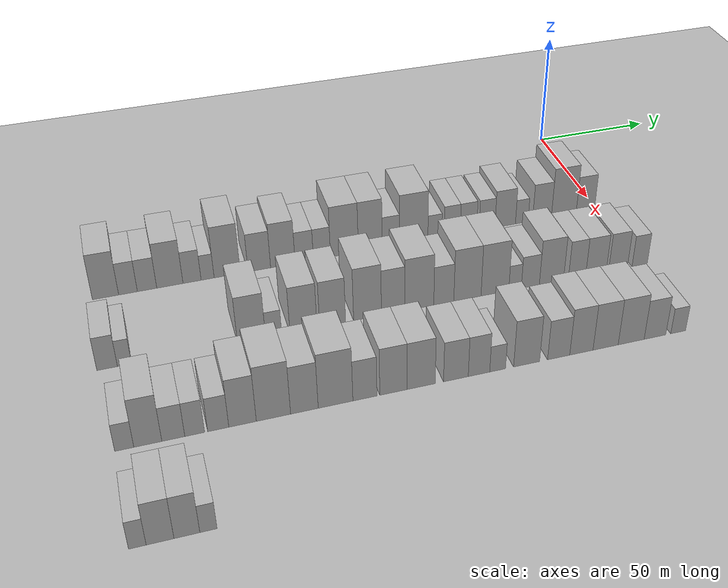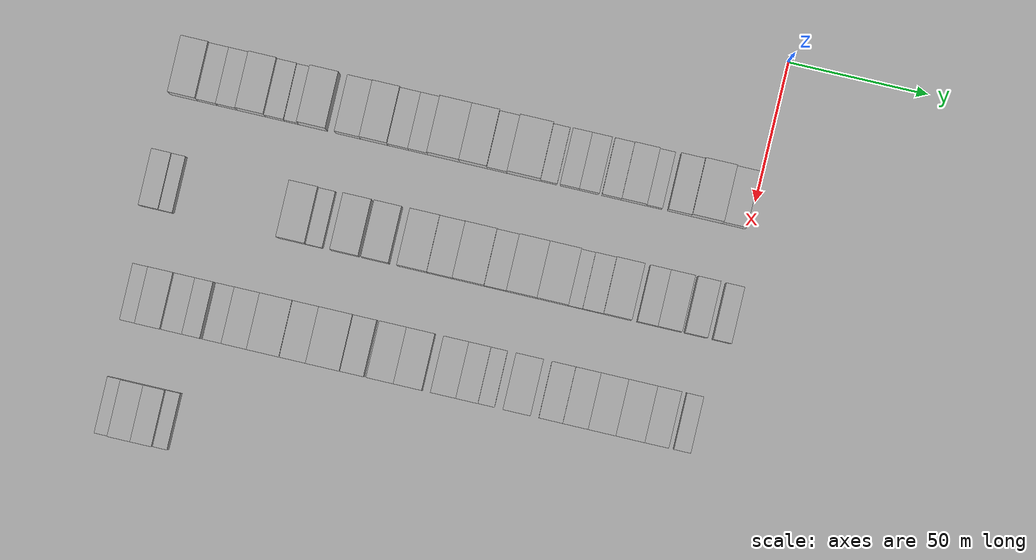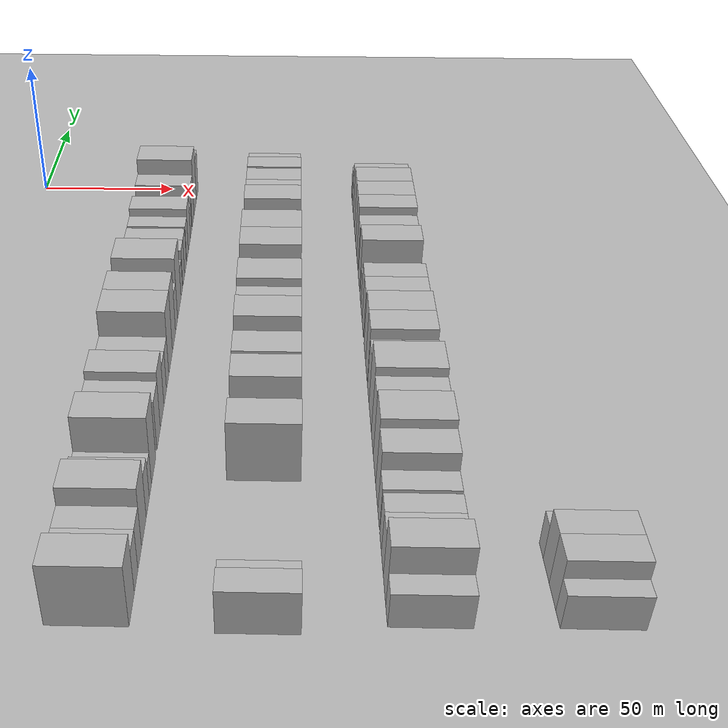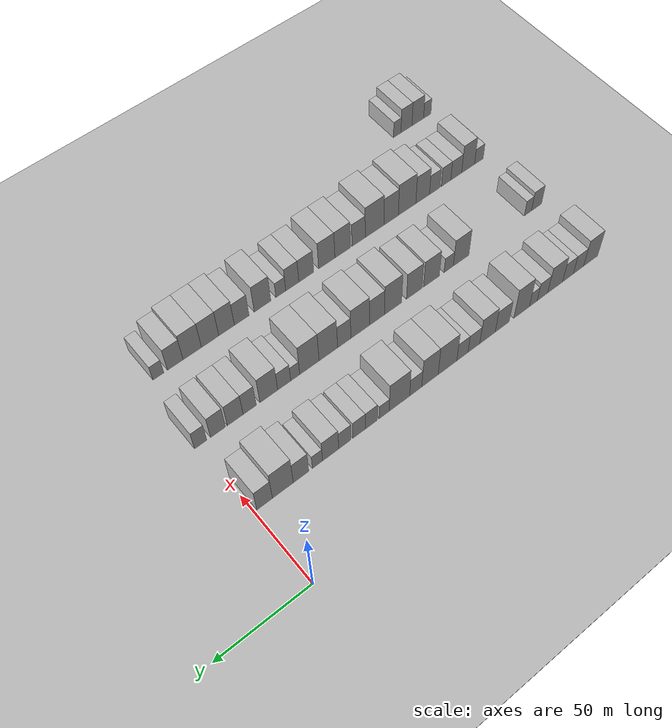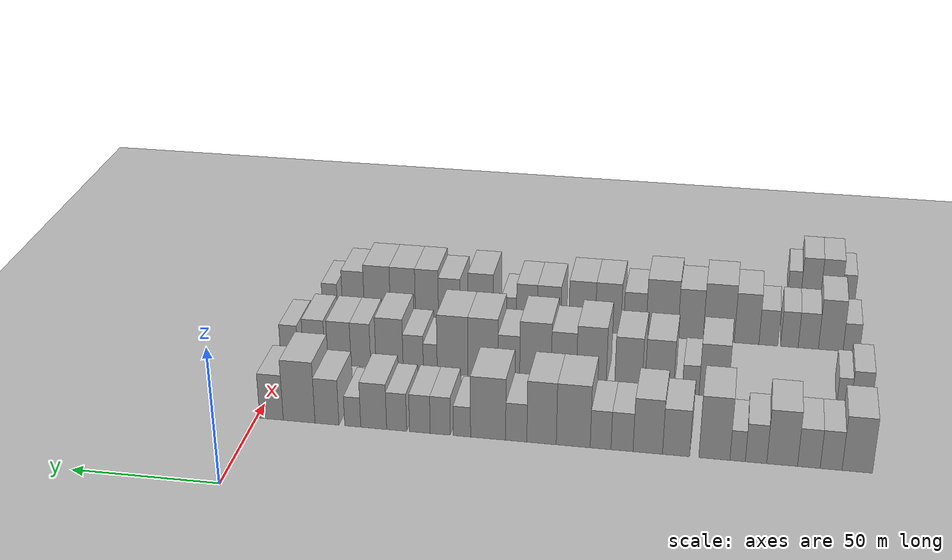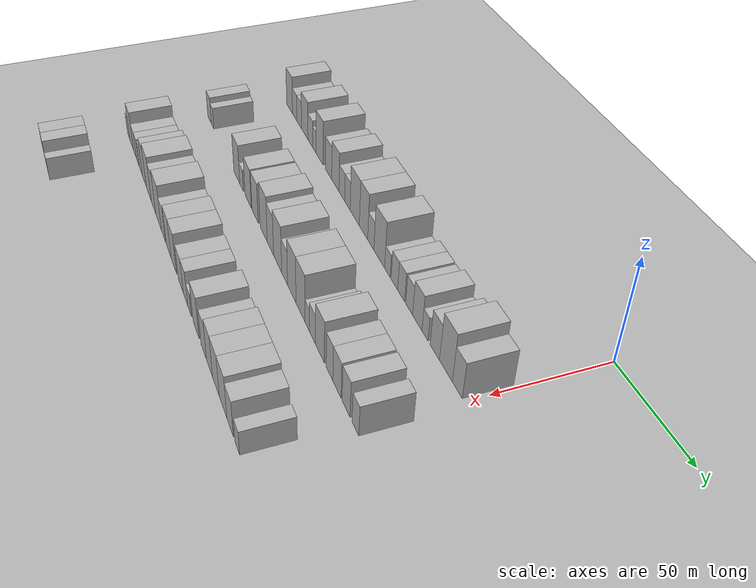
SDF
<sdf version="1.6">
 <world name="default">
  <include><name>ground_plane_1</name><uri>model://HANNAS_ground_plane</uri></include>
  <include>
   <name>ground_plane_2</name>
   <uri>model://HANNAS_ground_plane</uri>
   <pose>100 0 0  0 0 0</pose>
  </include>
  <model name="building_50">
   <static>1</static>
   <pose>50.0000 -201.2752 0 0.000000 0.000000 0.000000</pose>
   <link name="link">
    <pose>0 0 10.50 0 0 0</pose>
    <collision name="collision"><geometry><box><size>20.0000 9.6597 21.0000</size></box></geometry></collision>
    <visual name="visual">
     <cast_shadows>0</cast_shadows>
     <geometry><box><size>20.0000 9.6597 21.0000</size></box></geometry>
     <material>
      <script>
       <uri>model://HANNAS_wall/materials/scripts</uri>
       <uri>model://HANNAS_wall/materials/textures</uri>
       <name>vrc/HANNAS_wall</name>
      </script>
     </material>
    </visual>
   </link>
  </model>
  <model name="building_51">
   <static>1</static>
   <pose>50.0000 -192.9699 0 0.000000 0.000000 0.000000</pose>
   <link name="link">
    <pose>0 0 7.50 0 0 0</pose>
    <collision name="collision"><geometry><box><size>20.0000 6.9508 15.0000</size></box></geometry></collision>
    <visual name="visual">
     <cast_shadows>0</cast_shadows>
     <geometry><box><size>20.0000 6.9508 15.0000</size></box></geometry>
     <material>
      <script>
       <uri>model://HANNAS_wall/materials/scripts</uri>
       <uri>model://HANNAS_wall/materials/textures</uri>
       <name>vrc/HANNAS_wall</name>
      </script>
     </material>
    </visual>
   </link>
  </model>
  <model name="building_52">
   <static>1</static>
   <pose>50.0000 -185.8739 0 0.000000 0.000000 0.000000</pose>
   <link name="link">
    <pose>0 0 7.50 0 0 0</pose>
    <collision name="collision"><geometry><box><size>20.0000 7.2413 15.0000</size></box></geometry></collision>
    <visual name="visual">
     <cast_shadows>0</cast_shadows>
     <geometry><box><size>20.0000 7.2413 15.0000</size></box></geometry>
     <material>
      <script>
       <uri>model://HANNAS_wall/materials/scripts</uri>
       <uri>model://HANNAS_wall/materials/textures</uri>
       <name>vrc/HANNAS_wall</name>
      </script>
     </material>
    </visual>
   </link>
  </model>
  <model name="building_53">
   <static>1</static>
   <pose>50.0000 -177.2964 0 0.000000 0.000000 0.000000</pose>
   <link name="link">
    <pose>0 0 10.50 0 0 0</pose>
    <collision name="collision"><geometry><box><size>20.0000 9.9137 21.0000</size></box></geometry></collision>
    <visual name="visual">
     <cast_shadows>0</cast_shadows>
     <geometry><box><size>20.0000 9.9137 21.0000</size></box></geometry>
     <material>
      <script>
       <uri>model://HANNAS_wall/materials/scripts</uri>
       <uri>model://HANNAS_wall/materials/textures</uri>
       <name>vrc/HANNAS_wall</name>
      </script>
     </material>
    </visual>
   </link>
  </model>
  <model name="building_54">
   <static>1</static>
   <pose>50.0000 -168.8878 0 0.000000 0.000000 0.000000</pose>
   <link name="link">
    <pose>0 0 7.50 0 0 0</pose>
    <collision name="collision"><geometry><box><size>20.0000 6.9035 15.0000</size></box></geometry></collision>
    <visual name="visual">
     <cast_shadows>0</cast_shadows>
     <geometry><box><size>20.0000 6.9035 15.0000</size></box></geometry>
     <material>
      <script>
       <uri>model://HANNAS_wall/materials/scripts</uri>
       <uri>model://HANNAS_wall/materials/textures</uri>
       <name>vrc/HANNAS_wall</name>
      </script>
     </material>
    </visual>
   </link>
  </model>
  <model name="building_55">
   <static>1</static>
   <pose>50.0000 -162.9367 0 0.000000 0.000000 0.000000</pose>
   <link name="link">
    <pose>0 0 6.00 0 0 0</pose>
    <collision name="collision"><geometry><box><size>20.0000 4.9988 12.0000</size></box></geometry></collision>
    <visual name="visual">
     <cast_shadows>0</cast_shadows>
     <geometry><box><size>20.0000 4.9988 12.0000</size></box></geometry>
     <material>
      <script>
       <uri>model://HANNAS_wall/materials/scripts</uri>
       <uri>model://HANNAS_wall/materials/textures</uri>
       <name>vrc/HANNAS_wall</name>
      </script>
     </material>
    </visual>
   </link>
  </model>
  <model name="building_56">
   <static>1</static>
   <pose>50.0000 -155.3822 0 0.000000 0.000000 0.000000</pose>
   <link name="link">
    <pose>0 0 12.00 0 0 0</pose>
    <collision name="collision"><geometry><box><size>20.0000 10.1102 24.0000</size></box></geometry></collision>
    <visual name="visual">
     <cast_shadows>0</cast_shadows>
     <geometry><box><size>20.0000 10.1102 24.0000</size></box></geometry>
     <material>
      <script>
       <uri>model://HANNAS_wall/materials/scripts</uri>
       <uri>model://HANNAS_wall/materials/textures</uri>
       <name>vrc/HANNAS_wall</name>
      </script>
     </material>
    </visual>
   </link>
  </model>
  <model name="building_57">
   <static>1</static>
   <pose>50.0000 -142.8923 0 0.000000 0.000000 0.000000</pose>
   <link name="link">
    <pose>0 0 9.00 0 0 0</pose>
    <collision name="collision"><geometry><box><size>20.0000 8.8695 18.0000</size></box></geometry></collision>
    <visual name="visual">
     <cast_shadows>0</cast_shadows>
     <geometry><box><size>20.0000 8.8695 18.0000</size></box></geometry>
     <material>
      <script>
       <uri>model://HANNAS_wall/materials/scripts</uri>
       <uri>model://HANNAS_wall/materials/textures</uri>
       <name>vrc/HANNAS_wall</name>
      </script>
     </material>
    </visual>
   </link>
  </model>
  <model name="building_58">
   <static>1</static>
   <pose>50.0000 -133.6059 0 0.000000 0.000000 0.000000</pose>
   <link name="link">
    <pose>0 0 10.50 0 0 0</pose>
    <collision name="collision"><geometry><box><size>20.0000 9.7034 21.0000</size></box></geometry></collision>
    <visual name="visual">
     <cast_shadows>0</cast_shadows>
     <geometry><box><size>20.0000 9.7034 21.0000</size></box></geometry>
     <material>
      <script>
       <uri>model://HANNAS_wall/materials/scripts</uri>
       <uri>model://HANNAS_wall/materials/textures</uri>
       <name>vrc/HANNAS_wall</name>
      </script>
     </material>
    </visual>
   </link>
  </model>
  <model name="building_59">
   <static>1</static>
   <pose>50.0000 -125.1052 0 0.000000 0.000000 0.000000</pose>
   <link name="link">
    <pose>0 0 7.50 0 0 0</pose>
    <collision name="collision"><geometry><box><size>20.0000 7.2979 15.0000</size></box></geometry></collision>
    <visual name="visual">
     <cast_shadows>0</cast_shadows>
     <geometry><box><size>20.0000 7.2979 15.0000</size></box></geometry>
     <material>
      <script>
       <uri>model://HANNAS_wall/materials/scripts</uri>
       <uri>model://HANNAS_wall/materials/textures</uri>
       <name>vrc/HANNAS_wall</name>
      </script>
     </material>
    </visual>
   </link>
  </model>
  <model name="building_60">
   <static>1</static>
   <pose>50.0000 -118.0099 0 0.000000 0.000000 0.000000</pose>
   <link name="link">
    <pose>0 0 7.50 0 0 0</pose>
    <collision name="collision"><geometry><box><size>20.0000 6.8928 15.0000</size></box></geometry></collision>
    <visual name="visual">
     <cast_shadows>0</cast_shadows>
     <geometry><box><size>20.0000 6.8928 15.0000</size></box></geometry>
     <material>
      <script>
       <uri>model://HANNAS_wall/materials/scripts</uri>
       <uri>model://HANNAS_wall/materials/textures</uri>
       <name>vrc/HANNAS_wall</name>
      </script>
     </material>
    </visual>
   </link>
  </model>
  <model name="building_61">
   <static>1</static>
   <pose>50.0000 -108.9009 0 0.000000 0.000000 0.000000</pose>
   <link name="link">
    <pose>0 0 12.00 0 0 0</pose>
    <collision name="collision"><geometry><box><size>20.0000 11.3253 24.0000</size></box></geometry></collision>
    <visual name="visual">
     <cast_shadows>0</cast_shadows>
     <geometry><box><size>20.0000 11.3253 24.0000</size></box></geometry>
     <material>
      <script>
       <uri>model://HANNAS_wall/materials/scripts</uri>
       <uri>model://HANNAS_wall/materials/textures</uri>
       <name>vrc/HANNAS_wall</name>
      </script>
     </material>
    </visual>
   </link>
  </model>
  <model name="building_62">
   <static>1</static>
   <pose>50.0000 -98.3167 0 0.000000 0.000000 0.000000</pose>
   <link name="link">
    <pose>0 0 12.00 0 0 0</pose>
    <collision name="collision"><geometry><box><size>20.0000 9.8431 24.0000</size></box></geometry></collision>
    <visual name="visual">
     <cast_shadows>0</cast_shadows>
     <geometry><box><size>20.0000 9.8431 24.0000</size></box></geometry>
     <material>
      <script>
       <uri>model://HANNAS_wall/materials/scripts</uri>
       <uri>model://HANNAS_wall/materials/textures</uri>
       <name>vrc/HANNAS_wall</name>
      </script>
     </material>
    </visual>
   </link>
  </model>
  <model name="building_63">
   <static>1</static>
   <pose>50.0000 -89.8145 0 0.000000 0.000000 0.000000</pose>
   <link name="link">
    <pose>0 0 7.50 0 0 0</pose>
    <collision name="collision"><geometry><box><size>20.0000 7.1614 15.0000</size></box></geometry></collision>
    <visual name="visual">
     <cast_shadows>0</cast_shadows>
     <geometry><box><size>20.0000 7.1614 15.0000</size></box></geometry>
     <material>
      <script>
       <uri>model://HANNAS_wall/materials/scripts</uri>
       <uri>model://HANNAS_wall/materials/textures</uri>
       <name>vrc/HANNAS_wall</name>
      </script>
     </material>
    </visual>
   </link>
  </model>
  <model name="building_64">
   <static>1</static>
   <pose>50.0000 -80.2956 0 0.000000 0.000000 0.000000</pose>
   <link name="link">
    <pose>0 0 12.00 0 0 0</pose>
    <collision name="collision"><geometry><box><size>20.0000 11.8764 24.0000</size></box></geometry></collision>
    <visual name="visual">
     <cast_shadows>0</cast_shadows>
     <geometry><box><size>20.0000 11.8764 24.0000</size></box></geometry>
     <material>
      <script>
       <uri>model://HANNAS_wall/materials/scripts</uri>
       <uri>model://HANNAS_wall/materials/textures</uri>
       <name>vrc/HANNAS_wall</name>
      </script>
     </material>
    </visual>
   </link>
  </model>
  <model name="building_65">
   <static>1</static>
   <pose>50.0000 -71.4141 0 0.000000 0.000000 0.000000</pose>
   <link name="link">
    <pose>0 0 6.00 0 0 0</pose>
    <collision name="collision"><geometry><box><size>20.0000 5.8865 12.0000</size></box></geometry></collision>
    <visual name="visual">
     <cast_shadows>0</cast_shadows>
     <geometry><box><size>20.0000 5.8865 12.0000</size></box></geometry>
     <material>
      <script>
       <uri>model://HANNAS_wall/materials/scripts</uri>
       <uri>model://HANNAS_wall/materials/textures</uri>
       <name>vrc/HANNAS_wall</name>
      </script>
     </material>
    </visual>
   </link>
  </model>
  <model name="building_66">
   <static>1</static>
   <pose>50.0000 -64.0489 0 0.000000 0.000000 0.000000</pose>
   <link name="link">
    <pose>0 0 7.50 0 0 0</pose>
    <collision name="collision"><geometry><box><size>20.0000 6.8438 15.0000</size></box></geometry></collision>
    <visual name="visual">
     <cast_shadows>0</cast_shadows>
     <geometry><box><size>20.0000 6.8438 15.0000</size></box></geometry>
     <material>
      <script>
       <uri>model://HANNAS_wall/materials/scripts</uri>
       <uri>model://HANNAS_wall/materials/textures</uri>
       <name>vrc/HANNAS_wall</name>
      </script>
     </material>
    </visual>
   </link>
  </model>
  <model name="building_67">
   <static>1</static>
   <pose>50.0000 -57.0790 0 0.000000 0.000000 0.000000</pose>
   <link name="link">
    <pose>0 0 7.50 0 0 0</pose>
    <collision name="collision"><geometry><box><size>20.0000 7.0960 15.0000</size></box></geometry></collision>
    <visual name="visual">
     <cast_shadows>0</cast_shadows>
     <geometry><box><size>20.0000 7.0960 15.0000</size></box></geometry>
     <material>
      <script>
       <uri>model://HANNAS_wall/materials/scripts</uri>
       <uri>model://HANNAS_wall/materials/textures</uri>
       <name>vrc/HANNAS_wall</name>
      </script>
     </material>
    </visual>
   </link>
  </model>
  <model name="building_68">
   <static>1</static>
   <pose>50.0000 -49.0764 0 0.000000 0.000000 0.000000</pose>
   <link name="link">
    <pose>0 0 7.50 0 0 0</pose>
    <collision name="collision"><geometry><box><size>20.0000 6.9093 15.0000</size></box></geometry></collision>
    <visual name="visual">
     <cast_shadows>0</cast_shadows>
     <geometry><box><size>20.0000 6.9093 15.0000</size></box></geometry>
     <material>
      <script>
       <uri>model://HANNAS_wall/materials/scripts</uri>
       <uri>model://HANNAS_wall/materials/textures</uri>
       <name>vrc/HANNAS_wall</name>
      </script>
     </material>
    </visual>
   </link>
  </model>
  <model name="building_69">
   <static>1</static>
   <pose>50.0000 -41.1456 0 0.000000 0.000000 0.000000</pose>
   <link name="link">
    <pose>0 0 9.00 0 0 0</pose>
    <collision name="collision"><geometry><box><size>20.0000 8.9523 18.0000</size></box></geometry></collision>
    <visual name="visual">
     <cast_shadows>0</cast_shadows>
     <geometry><box><size>20.0000 8.9523 18.0000</size></box></geometry>
     <material>
      <script>
       <uri>model://HANNAS_wall/materials/scripts</uri>
       <uri>model://HANNAS_wall/materials/textures</uri>
       <name>vrc/HANNAS_wall</name>
      </script>
     </material>
    </visual>
   </link>
  </model>
  <model name="building_70">
   <static>1</static>
   <pose>50.0000 -33.8933 0 0.000000 0.000000 0.000000</pose>
   <link name="link">
    <pose>0 0 6.00 0 0 0</pose>
    <collision name="collision"><geometry><box><size>20.0000 5.5524 12.0000</size></box></geometry></collision>
    <visual name="visual">
     <cast_shadows>0</cast_shadows>
     <geometry><box><size>20.0000 5.5524 12.0000</size></box></geometry>
     <material>
      <script>
       <uri>model://HANNAS_wall/materials/scripts</uri>
       <uri>model://HANNAS_wall/materials/textures</uri>
       <name>vrc/HANNAS_wall</name>
      </script>
     </material>
    </visual>
   </link>
  </model>
  <model name="building_71">
   <static>1</static>
   <pose>50.0000 -24.9443 0 0.000000 0.000000 0.000000</pose>
   <link name="link">
    <pose>0 0 9.00 0 0 0</pose>
    <collision name="collision"><geometry><box><size>20.0000 8.3454 18.0000</size></box></geometry></collision>
    <visual name="visual">
     <cast_shadows>0</cast_shadows>
     <geometry><box><size>20.0000 8.3454 18.0000</size></box></geometry>
     <material>
      <script>
       <uri>model://HANNAS_wall/materials/scripts</uri>
       <uri>model://HANNAS_wall/materials/textures</uri>
       <name>vrc/HANNAS_wall</name>
      </script>
     </material>
    </visual>
   </link>
  </model>
  <model name="building_72">
   <static>1</static>
   <pose>50.0000 -15.2040 0 0.000000 0.000000 0.000000</pose>
   <link name="link">
    <pose>0 0 12.00 0 0 0</pose>
    <collision name="collision"><geometry><box><size>20.0000 11.1353 24.0000</size></box></geometry></collision>
    <visual name="visual">
     <cast_shadows>0</cast_shadows>
     <geometry><box><size>20.0000 11.1353 24.0000</size></box></geometry>
     <material>
      <script>
       <uri>model://HANNAS_wall/materials/scripts</uri>
       <uri>model://HANNAS_wall/materials/textures</uri>
       <name>vrc/HANNAS_wall</name>
      </script>
     </material>
    </visual>
   </link>
  </model>
  <model name="building_73">
   <static>1</static>
   <pose>50.0000 -5.4951 0 0.000000 0.000000 0.000000</pose>
   <link name="link">
    <pose>0 0 9.00 0 0 0</pose>
    <collision name="collision"><geometry><box><size>20.0000 8.2823 18.0000</size></box></geometry></collision>
    <visual name="visual">
     <cast_shadows>0</cast_shadows>
     <geometry><box><size>20.0000 8.2823 18.0000</size></box></geometry>
     <material>
      <script>
       <uri>model://HANNAS_wall/materials/scripts</uri>
       <uri>model://HANNAS_wall/materials/textures</uri>
       <name>vrc/HANNAS_wall</name>
      </script>
     </material>
    </visual>
   </link>
  </model>
  <model name="building_176">
   <static>1</static>
   <pose>90.0000 -203.9301 0 0.000000 0.000000 0.000000</pose>
   <link name="link">
    <pose>0 0 7.50 0 0 0</pose>
    <collision name="collision"><geometry><box><size>20.0000 6.9840 15.0000</size></box></geometry></collision>
    <visual name="visual">
     <cast_shadows>0</cast_shadows>
     <geometry><box><size>20.0000 6.9840 15.0000</size></box></geometry>
     <material>
      <script>
       <uri>model://HANNAS_wall/materials/scripts</uri>
       <uri>model://HANNAS_wall/materials/textures</uri>
       <name>vrc/HANNAS_wall</name>
      </script>
     </material>
    </visual>
   </link>
  </model>
  <model name="building_177">
   <static>1</static>
   <pose>90.0000 -198.0077 0 0.000000 0.000000 0.000000</pose>
   <link name="link">
    <pose>0 0 6.00 0 0 0</pose>
    <collision name="collision"><geometry><box><size>20.0000 4.8608 12.0000</size></box></geometry></collision>
    <visual name="visual">
     <cast_shadows>0</cast_shadows>
     <geometry><box><size>20.0000 4.8608 12.0000</size></box></geometry>
     <material>
      <script>
       <uri>model://HANNAS_wall/materials/scripts</uri>
       <uri>model://HANNAS_wall/materials/textures</uri>
       <name>vrc/HANNAS_wall</name>
      </script>
     </material>
    </visual>
   </link>
  </model>
  <model name="building_178">
   <static>1</static>
   <pose>90.0000 -153.4004 0 0.000000 0.000000 0.000000</pose>
   <link name="link">
    <pose>0 0 10.50 0 0 0</pose>
    <collision name="collision"><geometry><box><size>20.0000 10.1179 21.0000</size></box></geometry></collision>
    <visual name="visual">
     <cast_shadows>0</cast_shadows>
     <geometry><box><size>20.0000 10.1179 21.0000</size></box></geometry>
     <material>
      <script>
       <uri>model://HANNAS_wall/materials/scripts</uri>
       <uri>model://HANNAS_wall/materials/textures</uri>
       <name>vrc/HANNAS_wall</name>
      </script>
     </material>
    </visual>
   </link>
  </model>
  <model name="building_179">
   <static>1</static>
   <pose>90.0000 -145.3824 0 0.000000 0.000000 0.000000</pose>
   <link name="link">
    <pose>0 0 6.00 0 0 0</pose>
    <collision name="collision"><geometry><box><size>20.0000 5.9182 12.0000</size></box></geometry></collision>
    <visual name="visual">
     <cast_shadows>0</cast_shadows>
     <geometry><box><size>20.0000 5.9182 12.0000</size></box></geometry>
     <material>
      <script>
       <uri>model://HANNAS_wall/materials/scripts</uri>
       <uri>model://HANNAS_wall/materials/textures</uri>
       <name>vrc/HANNAS_wall</name>
      </script>
     </material>
    </visual>
   </link>
  </model>
  <model name="building_180">
   <static>1</static>
   <pose>90.0000 -134.4233 0 0.000000 0.000000 0.000000</pose>
   <link name="link">
    <pose>0 0 10.50 0 0 0</pose>
    <collision name="collision"><geometry><box><size>20.0000 10.0000 21.0000</size></box></geometry></collision>
    <visual name="visual">
     <cast_shadows>0</cast_shadows>
     <geometry><box><size>20.0000 10.0000 21.0000</size></box></geometry>
     <material>
      <script>
       <uri>model://HANNAS_wall/materials/scripts</uri>
       <uri>model://HANNAS_wall/materials/textures</uri>
       <name>vrc/HANNAS_wall</name>
      </script>
     </material>
    </visual>
   </link>
  </model>
  <model name="building_181">
   <static>1</static>
   <pose>90.0000 -123.5809 0 0.000000 0.000000 0.000000</pose>
   <link name="link">
    <pose>0 0 10.50 0 0 0</pose>
    <collision name="collision"><geometry><box><size>20.0000 9.6848 21.0000</size></box></geometry></collision>
    <visual name="visual">
     <cast_shadows>0</cast_shadows>
     <geometry><box><size>20.0000 9.6848 21.0000</size></box></geometry>
     <material>
      <script>
       <uri>model://HANNAS_wall/materials/scripts</uri>
       <uri>model://HANNAS_wall/materials/textures</uri>
       <name>vrc/HANNAS_wall</name>
      </script>
     </material>
    </visual>
   </link>
  </model>
  <model name="building_182">
   <static>1</static>
   <pose>90.0000 -110.4600 0 0.000000 0.000000 0.000000</pose>
   <link name="link">
    <pose>0 0 12.00 0 0 0</pose>
    <collision name="collision"><geometry><box><size>20.0000 10.5569 24.0000</size></box></geometry></collision>
    <visual name="visual">
     <cast_shadows>0</cast_shadows>
     <geometry><box><size>20.0000 10.5569 24.0000</size></box></geometry>
     <material>
      <script>
       <uri>model://HANNAS_wall/materials/scripts</uri>
       <uri>model://HANNAS_wall/materials/textures</uri>
       <name>vrc/HANNAS_wall</name>
      </script>
     </material>
    </visual>
   </link>
  </model>
  <model name="building_183">
   <static>1</static>
   <pose>90.0000 -100.7036 0 0.000000 0.000000 0.000000</pose>
   <link name="link">
    <pose>0 0 10.50 0 0 0</pose>
    <collision name="collision"><geometry><box><size>20.0000 8.9559 21.0000</size></box></geometry></collision>
    <visual name="visual">
     <cast_shadows>0</cast_shadows>
     <geometry><box><size>20.0000 8.9559 21.0000</size></box></geometry>
     <material>
      <script>
       <uri>model://HANNAS_wall/materials/scripts</uri>
       <uri>model://HANNAS_wall/materials/textures</uri>
       <name>vrc/HANNAS_wall</name>
      </script>
     </material>
    </visual>
   </link>
  </model>
  <model name="building_184">
   <static>1</static>
   <pose>90.0000 -90.5983 0 0.000000 0.000000 0.000000</pose>
   <link name="link">
    <pose>0 0 12.00 0 0 0</pose>
    <collision name="collision"><geometry><box><size>20.0000 11.2547 24.0000</size></box></geometry></collision>
    <visual name="visual">
     <cast_shadows>0</cast_shadows>
     <geometry><box><size>20.0000 11.2547 24.0000</size></box></geometry>
     <material>
      <script>
       <uri>model://HANNAS_wall/materials/scripts</uri>
       <uri>model://HANNAS_wall/materials/textures</uri>
       <name>vrc/HANNAS_wall</name>
      </script>
     </material>
    </visual>
   </link>
  </model>
  <model name="building_185">
   <static>1</static>
   <pose>90.0000 -81.0450 0 0.000000 0.000000 0.000000</pose>
   <link name="link">
    <pose>0 0 9.00 0 0 0</pose>
    <collision name="collision"><geometry><box><size>20.0000 7.8520 18.0000</size></box></geometry></collision>
    <visual name="visual">
     <cast_shadows>0</cast_shadows>
     <geometry><box><size>20.0000 7.8520 18.0000</size></box></geometry>
     <material>
      <script>
       <uri>model://HANNAS_wall/materials/scripts</uri>
       <uri>model://HANNAS_wall/materials/textures</uri>
       <name>vrc/HANNAS_wall</name>
      </script>
     </material>
    </visual>
   </link>
  </model>
  <model name="building_186">
   <static>1</static>
   <pose>90.0000 -71.7139 0 0.000000 0.000000 0.000000</pose>
   <link name="link">
    <pose>0 0 12.00 0 0 0</pose>
    <collision name="collision"><geometry><box><size>20.0000 10.8101 24.0000</size></box></geometry></collision>
    <visual name="visual">
     <cast_shadows>0</cast_shadows>
     <geometry><box><size>20.0000 10.8101 24.0000</size></box></geometry>
     <material>
      <script>
       <uri>model://HANNAS_wall/materials/scripts</uri>
       <uri>model://HANNAS_wall/materials/textures</uri>
       <name>vrc/HANNAS_wall</name>
      </script>
     </material>
    </visual>
   </link>
  </model>
  <model name="building_187">
   <static>1</static>
   <pose>90.0000 -60.7472 0 0.000000 0.000000 0.000000</pose>
   <link name="link">
    <pose>0 0 12.00 0 0 0</pose>
    <collision name="collision"><geometry><box><size>20.0000 11.1233 24.0000</size></box></geometry></collision>
    <visual name="visual">
     <cast_shadows>0</cast_shadows>
     <geometry><box><size>20.0000 11.1233 24.0000</size></box></geometry>
     <material>
      <script>
       <uri>model://HANNAS_wall/materials/scripts</uri>
       <uri>model://HANNAS_wall/materials/textures</uri>
       <name>vrc/HANNAS_wall</name>
      </script>
     </material>
    </visual>
   </link>
  </model>
  <model name="building_188">
   <static>1</static>
   <pose>90.0000 -52.6502 0 0.000000 0.000000 0.000000</pose>
   <link name="link">
    <pose>0 0 6.00 0 0 0</pose>
    <collision name="collision"><geometry><box><size>20.0000 5.0707 12.0000</size></box></geometry></collision>
    <visual name="visual">
     <cast_shadows>0</cast_shadows>
     <geometry><box><size>20.0000 5.0707 12.0000</size></box></geometry>
     <material>
      <script>
       <uri>model://HANNAS_wall/materials/scripts</uri>
       <uri>model://HANNAS_wall/materials/textures</uri>
       <name>vrc/HANNAS_wall</name>
      </script>
     </material>
    </visual>
   </link>
  </model>
  <model name="building_189">
   <static>1</static>
   <pose>90.0000 -46.4195 0 0.000000 0.000000 0.000000</pose>
   <link name="link">
    <pose>0 0 7.50 0 0 0</pose>
    <collision name="collision"><geometry><box><size>20.0000 7.3907 15.0000</size></box></geometry></collision>
    <visual name="visual">
     <cast_shadows>0</cast_shadows>
     <geometry><box><size>20.0000 7.3907 15.0000</size></box></geometry>
     <material>
      <script>
       <uri>model://HANNAS_wall/materials/scripts</uri>
       <uri>model://HANNAS_wall/materials/textures</uri>
       <name>vrc/HANNAS_wall</name>
      </script>
     </material>
    </visual>
   </link>
  </model>
  <model name="building_190">
   <static>1</static>
   <pose>90.0000 -37.7463 0 0.000000 0.000000 0.000000</pose>
   <link name="link">
    <pose>0 0 10.50 0 0 0</pose>
    <collision name="collision"><geometry><box><size>20.0000 9.9557 21.0000</size></box></geometry></collision>
    <visual name="visual">
     <cast_shadows>0</cast_shadows>
     <geometry><box><size>20.0000 9.9557 21.0000</size></box></geometry>
     <material>
      <script>
       <uri>model://HANNAS_wall/materials/scripts</uri>
       <uri>model://HANNAS_wall/materials/textures</uri>
       <name>vrc/HANNAS_wall</name>
      </script>
     </material>
    </visual>
   </link>
  </model>
  <model name="building_191">
   <static>1</static>
   <pose>90.0000 -27.1529 0 0.000000 0.000000 0.000000</pose>
   <link name="link">
    <pose>0 0 9.00 0 0 0</pose>
    <collision name="collision"><geometry><box><size>20.0000 7.2310 18.0000</size></box></geometry></collision>
    <visual name="visual">
     <cast_shadows>0</cast_shadows>
     <geometry><box><size>20.0000 7.2310 18.0000</size></box></geometry>
     <material>
      <script>
       <uri>model://HANNAS_wall/materials/scripts</uri>
       <uri>model://HANNAS_wall/materials/textures</uri>
       <name>vrc/HANNAS_wall</name>
      </script>
     </material>
    </visual>
   </link>
  </model>
  <model name="building_192">
   <static>1</static>
   <pose>90.0000 -19.2279 0 0.000000 0.000000 0.000000</pose>
   <link name="link">
    <pose>0 0 9.00 0 0 0</pose>
    <collision name="collision"><geometry><box><size>20.0000 8.6189 18.0000</size></box></geometry></collision>
    <visual name="visual">
     <cast_shadows>0</cast_shadows>
     <geometry><box><size>20.0000 8.6189 18.0000</size></box></geometry>
     <material>
      <script>
       <uri>model://HANNAS_wall/materials/scripts</uri>
       <uri>model://HANNAS_wall/materials/textures</uri>
       <name>vrc/HANNAS_wall</name>
      </script>
     </material>
    </visual>
   </link>
  </model>
  <model name="building_193">
   <static>1</static>
   <pose>90.0000 -9.9222 0 0.000000 0.000000 0.000000</pose>
   <link name="link">
    <pose>0 0 9.00 0 0 0</pose>
    <collision name="collision"><geometry><box><size>20.0000 7.9925 18.0000</size></box></geometry></collision>
    <visual name="visual">
     <cast_shadows>0</cast_shadows>
     <geometry><box><size>20.0000 7.9925 18.0000</size></box></geometry>
     <material>
      <script>
       <uri>model://HANNAS_wall/materials/scripts</uri>
       <uri>model://HANNAS_wall/materials/textures</uri>
       <name>vrc/HANNAS_wall</name>
      </script>
     </material>
    </visual>
   </link>
  </model>
  <model name="building_194">
   <static>1</static>
   <pose>90.0000 -0.6601 0 0.000000 0.000000 0.000000</pose>
   <link name="link">
    <pose>0 0 7.50 0 0 0</pose>
    <collision name="collision"><geometry><box><size>20.0000 6.5317 15.0000</size></box></geometry></collision>
    <visual name="visual">
     <cast_shadows>0</cast_shadows>
     <geometry><box><size>20.0000 6.5317 15.0000</size></box></geometry>
     <material>
      <script>
       <uri>model://HANNAS_wall/materials/scripts</uri>
       <uri>model://HANNAS_wall/materials/textures</uri>
       <name>vrc/HANNAS_wall</name>
      </script>
     </material>
    </visual>
   </link>
  </model>
  <model name="building_310">
   <static>1</static>
   <pose>130.0000 -201.8262 0 0.000000 0.000000 0.000000</pose>
   <link name="link">
    <pose>0 0 6.00 0 0 0</pose>
    <collision name="collision"><geometry><box><size>20.0000 5.9999 12.0000</size></box></geometry></collision>
    <visual name="visual">
     <cast_shadows>0</cast_shadows>
     <geometry><box><size>20.0000 5.9999 12.0000</size></box></geometry>
     <material>
      <script>
       <uri>model://HANNAS_wall/materials/scripts</uri>
       <uri>model://HANNAS_wall/materials/textures</uri>
       <name>vrc/HANNAS_wall</name>
      </script>
     </material>
    </visual>
   </link>
  </model>
  <model name="building_311">
   <static>1</static>
   <pose>130.0000 -194.3865 0 0.000000 0.000000 0.000000</pose>
   <link name="link">
    <pose>0 0 10.50 0 0 0</pose>
    <collision name="collision"><geometry><box><size>20.0000 8.8794 21.0000</size></box></geometry></collision>
    <visual name="visual">
     <cast_shadows>0</cast_shadows>
     <geometry><box><size>20.0000 8.8794 21.0000</size></box></geometry>
     <material>
      <script>
       <uri>model://HANNAS_wall/materials/scripts</uri>
       <uri>model://HANNAS_wall/materials/textures</uri>
       <name>vrc/HANNAS_wall</name>
      </script>
     </material>
    </visual>
   </link>
  </model>
  <model name="building_312">
   <static>1</static>
   <pose>130.0000 -186.2729 0 0.000000 0.000000 0.000000</pose>
   <link name="link">
    <pose>0 0 7.50 0 0 0</pose>
    <collision name="collision"><geometry><box><size>20.0000 7.3479 15.0000</size></box></geometry></collision>
    <visual name="visual">
     <cast_shadows>0</cast_shadows>
     <geometry><box><size>20.0000 7.3479 15.0000</size></box></geometry>
     <material>
      <script>
       <uri>model://HANNAS_wall/materials/scripts</uri>
       <uri>model://HANNAS_wall/materials/textures</uri>
       <name>vrc/HANNAS_wall</name>
      </script>
     </material>
    </visual>
   </link>
  </model>
  <model name="building_313">
   <static>1</static>
   <pose>130.0000 -179.3997 0 0.000000 0.000000 0.000000</pose>
   <link name="link">
    <pose>0 0 7.50 0 0 0</pose>
    <collision name="collision"><geometry><box><size>20.0000 6.3985 15.0000</size></box></geometry></collision>
    <visual name="visual">
     <cast_shadows>0</cast_shadows>
     <geometry><box><size>20.0000 6.3985 15.0000</size></box></geometry>
     <material>
      <script>
       <uri>model://HANNAS_wall/materials/scripts</uri>
       <uri>model://HANNAS_wall/materials/textures</uri>
       <name>vrc/HANNAS_wall</name>
      </script>
     </material>
    </visual>
   </link>
  </model>
  <model name="building_314">
   <static>1</static>
   <pose>130.0000 -171.7525 0 0.000000 0.000000 0.000000</pose>
   <link name="link">
    <pose>0 0 7.50 0 0 0</pose>
    <collision name="collision"><geometry><box><size>20.0000 6.8959 15.0000</size></box></geometry></collision>
    <visual name="visual">
     <cast_shadows>0</cast_shadows>
     <geometry><box><size>20.0000 6.8959 15.0000</size></box></geometry>
     <material>
      <script>
       <uri>model://HANNAS_wall/materials/scripts</uri>
       <uri>model://HANNAS_wall/materials/textures</uri>
       <name>vrc/HANNAS_wall</name>
      </script>
     </material>
    </visual>
   </link>
  </model>
  <model name="building_315">
   <static>1</static>
   <pose>130.0000 -163.7702 0 0.000000 0.000000 0.000000</pose>
   <link name="link">
    <pose>0 0 10.50 0 0 0</pose>
    <collision name="collision"><geometry><box><size>20.0000 9.0687 21.0000</size></box></geometry></collision>
    <visual name="visual">
     <cast_shadows>0</cast_shadows>
     <geometry><box><size>20.0000 9.0687 21.0000</size></box></geometry>
     <material>
      <script>
       <uri>model://HANNAS_wall/materials/scripts</uri>
       <uri>model://HANNAS_wall/materials/textures</uri>
       <name>vrc/HANNAS_wall</name>
      </script>
     </material>
    </visual>
   </link>
  </model>
  <model name="building_316">
   <static>1</static>
   <pose>130.0000 -153.5148 0 0.000000 0.000000 0.000000</pose>
   <link name="link">
    <pose>0 0 12.00 0 0 0</pose>
    <collision name="collision"><geometry><box><size>20.0000 11.4421 24.0000</size></box></geometry></collision>
    <visual name="visual">
     <cast_shadows>0</cast_shadows>
     <geometry><box><size>20.0000 11.4421 24.0000</size></box></geometry>
     <material>
      <script>
       <uri>model://HANNAS_wall/materials/scripts</uri>
       <uri>model://HANNAS_wall/materials/textures</uri>
       <name>vrc/HANNAS_wall</name>
      </script>
     </material>
    </visual>
   </link>
  </model>
  <model name="building_317">
   <static>1</static>
   <pose>130.0000 -143.1192 0 0.000000 0.000000 0.000000</pose>
   <link name="link">
    <pose>0 0 10.50 0 0 0</pose>
    <collision name="collision"><geometry><box><size>20.0000 9.3489 21.0000</size></box></geometry></collision>
    <visual name="visual">
     <cast_shadows>0</cast_shadows>
     <geometry><box><size>20.0000 9.3489 21.0000</size></box></geometry>
     <material>
      <script>
       <uri>model://HANNAS_wall/materials/scripts</uri>
       <uri>model://HANNAS_wall/materials/textures</uri>
       <name>vrc/HANNAS_wall</name>
      </script>
     </material>
    </visual>
   </link>
  </model>
  <model name="building_318">
   <static>1</static>
   <pose>130.0000 -132.4932 0 0.000000 0.000000 0.000000</pose>
   <link name="link">
    <pose>0 0 12.00 0 0 0</pose>
    <collision name="collision"><geometry><box><size>20.0000 11.9032 24.0000</size></box></geometry></collision>
    <visual name="visual">
     <cast_shadows>0</cast_shadows>
     <geometry><box><size>20.0000 11.9032 24.0000</size></box></geometry>
     <material>
      <script>
       <uri>model://HANNAS_wall/materials/scripts</uri>
       <uri>model://HANNAS_wall/materials/textures</uri>
       <name>vrc/HANNAS_wall</name>
      </script>
     </material>
    </visual>
   </link>
  </model>
  <model name="building_319">
   <static>1</static>
   <pose>130.0000 -122.3694 0 0.000000 0.000000 0.000000</pose>
   <link name="link">
    <pose>0 0 9.00 0 0 0</pose>
    <collision name="collision"><geometry><box><size>20.0000 8.3444 18.0000</size></box></geometry></collision>
    <visual name="visual">
     <cast_shadows>0</cast_shadows>
     <geometry><box><size>20.0000 8.3444 18.0000</size></box></geometry>
     <material>
      <script>
       <uri>model://HANNAS_wall/materials/scripts</uri>
       <uri>model://HANNAS_wall/materials/textures</uri>
       <name>vrc/HANNAS_wall</name>
      </script>
     </material>
    </visual>
   </link>
  </model>
  <model name="building_320">
   <static>1</static>
   <pose>130.0000 -112.4009 0 0.000000 0.000000 0.000000</pose>
   <link name="link">
    <pose>0 0 10.50 0 0 0</pose>
    <collision name="collision"><geometry><box><size>20.0000 9.5924 21.0000</size></box></geometry></collision>
    <visual name="visual">
     <cast_shadows>0</cast_shadows>
     <geometry><box><size>20.0000 9.5924 21.0000</size></box></geometry>
     <material>
      <script>
       <uri>model://HANNAS_wall/materials/scripts</uri>
       <uri>model://HANNAS_wall/materials/textures</uri>
       <name>vrc/HANNAS_wall</name>
      </script>
     </material>
    </visual>
   </link>
  </model>
  <model name="building_321">
   <static>1</static>
   <pose>130.0000 -102.5970 0 0.000000 0.000000 0.000000</pose>
   <link name="link">
    <pose>0 0 10.50 0 0 0</pose>
    <collision name="collision"><geometry><box><size>20.0000 10.0156 21.0000</size></box></geometry></collision>
    <visual name="visual">
     <cast_shadows>0</cast_shadows>
     <geometry><box><size>20.0000 10.0156 21.0000</size></box></geometry>
     <material>
      <script>
       <uri>model://HANNAS_wall/materials/scripts</uri>
       <uri>model://HANNAS_wall/materials/textures</uri>
       <name>vrc/HANNAS_wall</name>
      </script>
     </material>
    </visual>
   </link>
  </model>
  <model name="building_322">
   <static>1</static>
   <pose>130.0000 -90.1166 0 0.000000 0.000000 0.000000</pose>
   <link name="link">
    <pose>0 0 9.00 0 0 0</pose>
    <collision name="collision"><geometry><box><size>20.0000 8.9452 18.0000</size></box></geometry></collision>
    <visual name="visual">
     <cast_shadows>0</cast_shadows>
     <geometry><box><size>20.0000 8.9452 18.0000</size></box></geometry>
     <material>
      <script>
       <uri>model://HANNAS_wall/materials/scripts</uri>
       <uri>model://HANNAS_wall/materials/textures</uri>
       <name>vrc/HANNAS_wall</name>
      </script>
     </material>
    </visual>
   </link>
  </model>
  <model name="building_323">
   <static>1</static>
   <pose>130.0000 -81.7169 0 0.000000 0.000000 0.000000</pose>
   <link name="link">
    <pose>0 0 9.00 0 0 0</pose>
    <collision name="collision"><geometry><box><size>20.0000 7.8541 18.0000</size></box></geometry></collision>
    <visual name="visual">
     <cast_shadows>0</cast_shadows>
     <geometry><box><size>20.0000 7.8541 18.0000</size></box></geometry>
     <material>
      <script>
       <uri>model://HANNAS_wall/materials/scripts</uri>
       <uri>model://HANNAS_wall/materials/textures</uri>
       <name>vrc/HANNAS_wall</name>
      </script>
     </material>
    </visual>
   </link>
  </model>
  <model name="building_324">
   <static>1</static>
   <pose>130.0000 -74.8792 0 0.000000 0.000000 0.000000</pose>
   <link name="link">
    <pose>0 0 6.00 0 0 0</pose>
    <collision name="collision"><geometry><box><size>20.0000 5.8214 12.0000</size></box></geometry></collision>
    <visual name="visual">
     <cast_shadows>0</cast_shadows>
     <geometry><box><size>20.0000 5.8214 12.0000</size></box></geometry>
     <material>
      <script>
       <uri>model://HANNAS_wall/materials/scripts</uri>
       <uri>model://HANNAS_wall/materials/textures</uri>
       <name>vrc/HANNAS_wall</name>
      </script>
     </material>
    </visual>
   </link>
  </model>
  <model name="building_325">
   <static>1</static>
   <pose>130.0000 -64.1117 0 0.000000 0.000000 0.000000</pose>
   <link name="link">
    <pose>0 0 10.50 0 0 0</pose>
    <collision name="collision"><geometry><box><size>20.0000 9.7136 21.0000</size></box></geometry></collision>
    <visual name="visual">
     <cast_shadows>0</cast_shadows>
     <geometry><box><size>20.0000 9.7136 21.0000</size></box></geometry>
     <material>
      <script>
       <uri>model://HANNAS_wall/materials/scripts</uri>
       <uri>model://HANNAS_wall/materials/textures</uri>
       <name>vrc/HANNAS_wall</name>
      </script>
     </material>
    </visual>
   </link>
  </model>
  <model name="building_326">
   <static>1</static>
   <pose>130.0000 -52.0515 0 0.000000 0.000000 0.000000</pose>
   <link name="link">
    <pose>0 0 9.00 0 0 0</pose>
    <collision name="collision"><geometry><box><size>20.0000 8.4068 18.0000</size></box></geometry></collision>
    <visual name="visual">
     <cast_shadows>0</cast_shadows>
     <geometry><box><size>20.0000 8.4068 18.0000</size></box></geometry>
     <material>
      <script>
       <uri>model://HANNAS_wall/materials/scripts</uri>
       <uri>model://HANNAS_wall/materials/textures</uri>
       <name>vrc/HANNAS_wall</name>
      </script>
     </material>
    </visual>
   </link>
  </model>
  <model name="building_327">
   <static>1</static>
   <pose>130.0000 -43.3922 0 0.000000 0.000000 0.000000</pose>
   <link name="link">
    <pose>0 0 10.50 0 0 0</pose>
    <collision name="collision"><geometry><box><size>20.0000 8.9118 21.0000</size></box></geometry></collision>
    <visual name="visual">
     <cast_shadows>0</cast_shadows>
     <geometry><box><size>20.0000 8.9118 21.0000</size></box></geometry>
     <material>
      <script>
       <uri>model://HANNAS_wall/materials/scripts</uri>
       <uri>model://HANNAS_wall/materials/textures</uri>
       <name>vrc/HANNAS_wall</name>
      </script>
     </material>
    </visual>
   </link>
  </model>
  <model name="building_328">
   <static>1</static>
   <pose>130.0000 -34.0581 0 0.000000 0.000000 0.000000</pose>
   <link name="link">
    <pose>0 0 10.50 0 0 0</pose>
    <collision name="collision"><geometry><box><size>20.0000 9.7564 21.0000</size></box></geometry></collision>
    <visual name="visual">
     <cast_shadows>0</cast_shadows>
     <geometry><box><size>20.0000 9.7564 21.0000</size></box></geometry>
     <material>
      <script>
       <uri>model://HANNAS_wall/materials/scripts</uri>
       <uri>model://HANNAS_wall/materials/textures</uri>
       <name>vrc/HANNAS_wall</name>
      </script>
     </material>
    </visual>
   </link>
  </model>
  <model name="building_329">
   <static>1</static>
   <pose>130.0000 -24.0826 0 0.000000 0.000000 0.000000</pose>
   <link name="link">
    <pose>0 0 10.50 0 0 0</pose>
    <collision name="collision"><geometry><box><size>20.0000 10.1948 21.0000</size></box></geometry></collision>
    <visual name="visual">
     <cast_shadows>0</cast_shadows>
     <geometry><box><size>20.0000 10.1948 21.0000</size></box></geometry>
     <material>
      <script>
       <uri>model://HANNAS_wall/materials/scripts</uri>
       <uri>model://HANNAS_wall/materials/textures</uri>
       <name>vrc/HANNAS_wall</name>
      </script>
     </material>
    </visual>
   </link>
  </model>
  <model name="building_330">
   <static>1</static>
   <pose>130.0000 -14.7041 0 0.000000 0.000000 0.000000</pose>
   <link name="link">
    <pose>0 0 9.00 0 0 0</pose>
    <collision name="collision"><geometry><box><size>20.0000 8.5621 18.0000</size></box></geometry></collision>
    <visual name="visual">
     <cast_shadows>0</cast_shadows>
     <geometry><box><size>20.0000 8.5621 18.0000</size></box></geometry>
     <material>
      <script>
       <uri>model://HANNAS_wall/materials/scripts</uri>
       <uri>model://HANNAS_wall/materials/textures</uri>
       <name>vrc/HANNAS_wall</name>
      </script>
     </material>
    </visual>
   </link>
  </model>
  <model name="building_331">
   <static>1</static>
   <pose>130.0000 -5.4510 0 0.000000 0.000000 0.000000</pose>
   <link name="link">
    <pose>0 0 6.00 0 0 0</pose>
    <collision name="collision"><geometry><box><size>20.0000 5.9441 12.0000</size></box></geometry></collision>
    <visual name="visual">
     <cast_shadows>0</cast_shadows>
     <geometry><box><size>20.0000 5.9441 12.0000</size></box></geometry>
     <material>
      <script>
       <uri>model://HANNAS_wall/materials/scripts</uri>
       <uri>model://HANNAS_wall/materials/textures</uri>
       <name>vrc/HANNAS_wall</name>
      </script>
     </material>
    </visual>
   </link>
  </model>
  <model name="building_449">
   <static>1</static>
   <pose>170.0000 -201.8230 0 0.000000 0.000000 0.000000</pose>
   <link name="link">
    <pose>0 0 6.00 0 0 0</pose>
    <collision name="collision"><geometry><box><size>20.0000 5.0629 12.0000</size></box></geometry></collision>
    <visual name="visual">
     <cast_shadows>0</cast_shadows>
     <geometry><box><size>20.0000 5.0629 12.0000</size></box></geometry>
     <material>
      <script>
       <uri>model://HANNAS_wall/materials/scripts</uri>
       <uri>model://HANNAS_wall/materials/textures</uri>
       <name>vrc/HANNAS_wall</name>
      </script>
     </material>
    </visual>
   </link>
  </model>
  <model name="building_450">
   <static>1</static>
   <pose>170.0000 -195.2607 0 0.000000 0.000000 0.000000</pose>
   <link name="link">
    <pose>0 0 9.00 0 0 0</pose>
    <collision name="collision"><geometry><box><size>20.0000 8.0618 18.0000</size></box></geometry></collision>
    <visual name="visual">
     <cast_shadows>0</cast_shadows>
     <geometry><box><size>20.0000 8.0618 18.0000</size></box></geometry>
     <material>
      <script>
       <uri>model://HANNAS_wall/materials/scripts</uri>
       <uri>model://HANNAS_wall/materials/textures</uri>
       <name>vrc/HANNAS_wall</name>
      </script>
     </material>
    </visual>
   </link>
  </model>
  <model name="building_451">
   <static>1</static>
   <pose>170.0000 -187.4420 0 0.000000 0.000000 0.000000</pose>
   <link name="link">
    <pose>0 0 9.00 0 0 0</pose>
    <collision name="collision"><geometry><box><size>20.0000 7.5755 18.0000</size></box></geometry></collision>
    <visual name="visual">
     <cast_shadows>0</cast_shadows>
     <geometry><box><size>20.0000 7.5755 18.0000</size></box></geometry>
     <material>
      <script>
       <uri>model://HANNAS_wall/materials/scripts</uri>
       <uri>model://HANNAS_wall/materials/textures</uri>
       <name>vrc/HANNAS_wall</name>
      </script>
     </material>
    </visual>
   </link>
  </model>
  <model name="building_452">
   <static>1</static>
   <pose>170.0000 -181.1054 0 0.000000 0.000000 0.000000</pose>
   <link name="link">
    <pose>0 0 6.00 0 0 0</pose>
    <collision name="collision"><geometry><box><size>20.0000 5.0977 12.0000</size></box></geometry></collision>
    <visual name="visual">
     <cast_shadows>0</cast_shadows>
     <geometry><box><size>20.0000 5.0977 12.0000</size></box></geometry>
     <material>
      <script>
       <uri>model://HANNAS_wall/materials/scripts</uri>
       <uri>model://HANNAS_wall/materials/textures</uri>
       <name>vrc/HANNAS_wall</name>
      </script>
     </material>
    </visual>
   </link>
  </model>
 </world>
</sdf>
